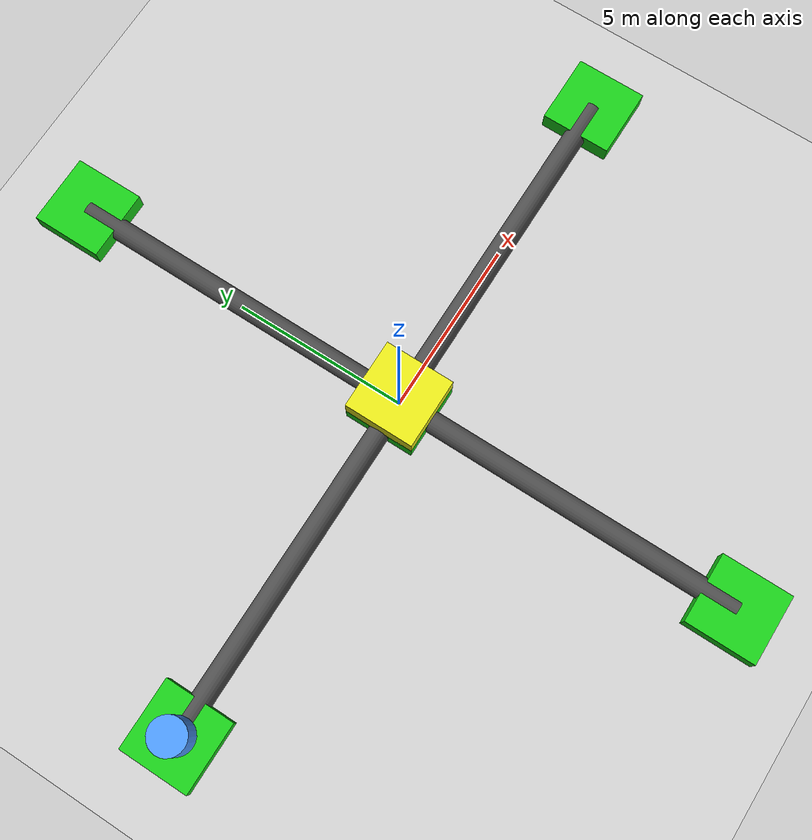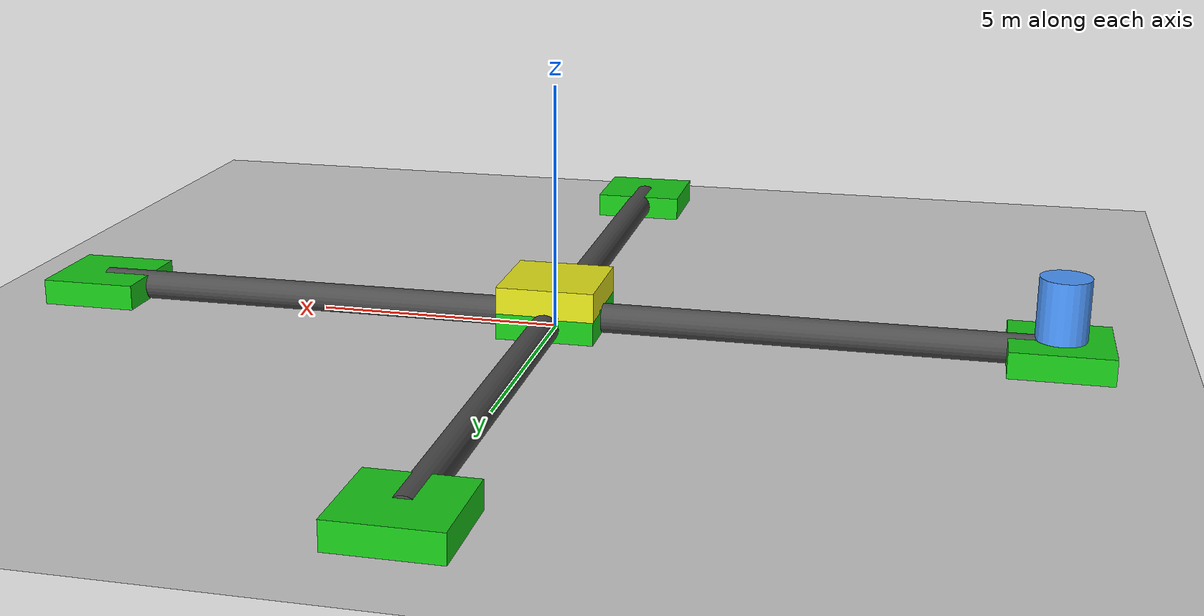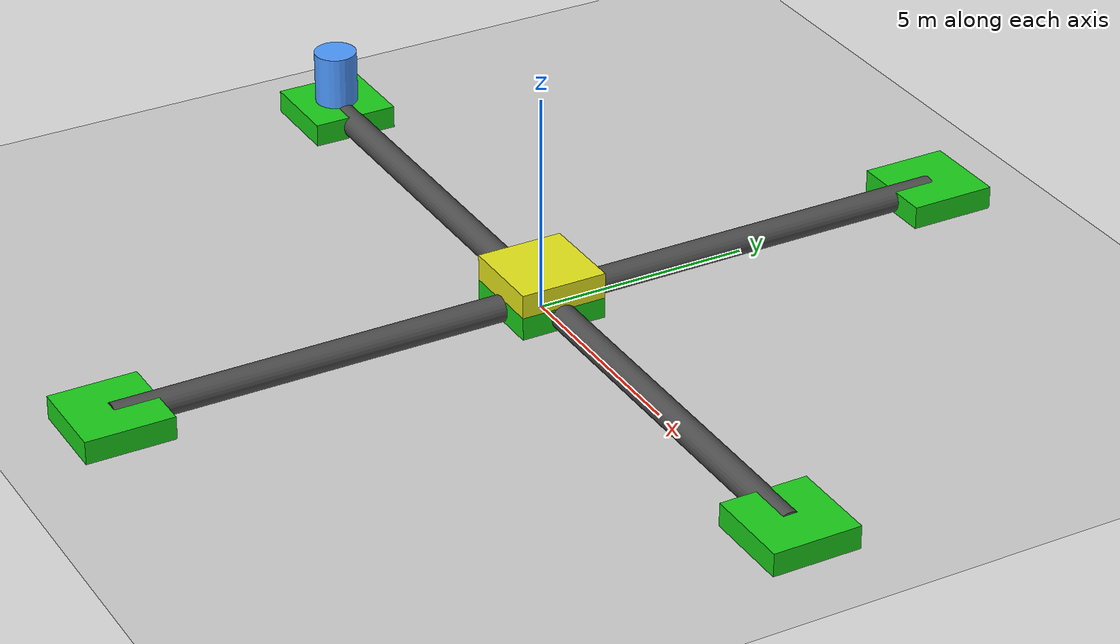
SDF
<?xml version="1.0" ?>
<sdf version="1.6">
  <world name="pipeline_world">

    <!-- Ground plane -->
    <include>
      <uri>model://ground_plane</uri>
    </include>

    <!-- Sun -->
    <include>
      <uri>model://sun</uri>
    </include>

  <include>
  <uri>model://station</uri>
  <name>station_1</name>
  <pose>-10 0 0 0 0 0</pose>
</include>

  <include>
  <uri>model://station</uri>
  <name>station_2</name>
  <pose>10 0 0 0 0 0</pose>
</include>

  <include>
  <uri>model://station</uri>
  <name>station_3</name>
  <pose>0 -10 0 0 0 0</pose>
</include>

  <include>
  <uri>model://station</uri>
  <name>station_4</name>
  <pose>0 10 0 0 0 0</pose>
</include>

  <include>
  <uri>model://station</uri>
  <name>station_5</name>
  <pose>0 0 0 0 0 0</pose>
</include>

<!-- Pipe from Station 1 to Center -->
<include>
  <uri>model://pipeline</uri>
  <name>pipe_1_5</name>
  <pose>-5 0 0.25 0 1.5708 0</pose>
</include>

<!-- Pipe from Station 2 to Center -->
<include>
  <uri>model://pipeline</uri>
  <name>pipe_2_5</name>
  <pose>5 0 0.25 0 1.5708 0</pose>
</include>

<!-- Pipe from Station 3 to Center -->
<include>
  <uri>model://pipeline</uri>
  <name>pipe_3_5</name>
  <pose>0 -5 0.25 1.5708 0 0</pose>
</include>

<!-- Pipe from Station 4 to Center -->
<include>
  <uri>model://pipeline</uri>
  <name>pipe_4_5</name>
  <pose>0 5 0.25 1.5708 0 0</pose>
</include>

<include>
  <uri>model://transport_capsule</uri>
  <pose>-10 0 1 0 0 0</pose> <!-- Initial spawn location -->
</include>

  <model name="cross_platform">
  <static>true</static>
  <pose>0 0 0.75 0 0 0</pose> <!-- Positioned at origin, raised to align with pipeline -->
  <link name="platform_link">
    <visual name="visual">
      <geometry>
        <box>
          <size>2.0 2.0 0.6</size> <!-- Square platform -->
        </box>
      </geometry>
      <material>
        <ambient>0.9 0.9 0.1 1</ambient> <!-- Yellow color -->
        <diffuse>0.9 0.9 0.1 1</diffuse>
      </material>
    </visual>
    <collision name="collision">
      <geometry>
        <box>
          <size>2.0 2.0 0.6</size>
        </box>
      </geometry>
    </collision>
    <inertial>
      <mass>1.0</mass>
      <inertia>
        <ixx>1</ixx>
        <iyy>1</iyy>
        <izz>1</izz>
        <ixy>0.0</ixy>
        <ixz>0.0</ixz>
        <iyz>0.0</iyz>
      </inertia>
    </inertial>
  </link>
</model>

 </world>

</sdf>

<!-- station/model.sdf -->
<sdf version="1.6">
  <model name="station">
    <static>true</static>
    <link name="station_link">
      <collision name="collision">
        <geometry>
          <box>
            <size>2 2 1</size>
          </box>
        </geometry>
      </collision>
      <visual name="visual">
        <geometry>
          <box>
            <size>2 2 1</size>
          </box>
        </geometry>

         <material>
            <ambient>0.1 0.8 0.1 1</ambient>  <!-- Green color -->
          </material>

      </visual>
    </link>
  </model>
</sdf>

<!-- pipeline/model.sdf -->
<sdf version="1.6">
  <model name="pipeline">
    <static>true</static>
    <link name="link">
      <visual name="visual">
        <geometry>
          <cylinder>
            <radius>0.3</radius>
            <length>10</length>
          </cylinder>
        </geometry>
        <material>
          <ambient>0.3 0.3 0.3 1</ambient>
        </material>
      </visual>
    </link>
  </model>
</sdf>

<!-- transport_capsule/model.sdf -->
<sdf version="1.6">
  <model name="transport_capsule">
    <pose>0 0 1 0 0 0</pose> <!-- Initial position (x y z roll pitch yaw) -->
    <static>false</static>

    <link name="body">
      <pose>0 0 0 0 0 0</pose>

      <collision name="collision">
        <geometry>
          <cylinder>
            <radius>0.5</radius>
            <length>1.5</length>
          </cylinder>
        </geometry>
      </collision>

      <visual name="visual">
        <geometry>
          <cylinder>
            <radius>0.5</radius>
            <length>1.5</length>
          </cylinder>
        </geometry>
        <material>
          <ambient>0.3 0.6 1.0 1</ambient>
          <diffuse>0.3 0.6 1.0 1</diffuse>
        </material>
      </visual>

      <inertial>
        <mass>10.0</mass>
        <inertia>
          <ixx>1</ixx>
          <iyy>1</iyy>
          <izz>1</izz>
        </inertia>
      </inertial>
    </link>
  </model>
</sdf>
